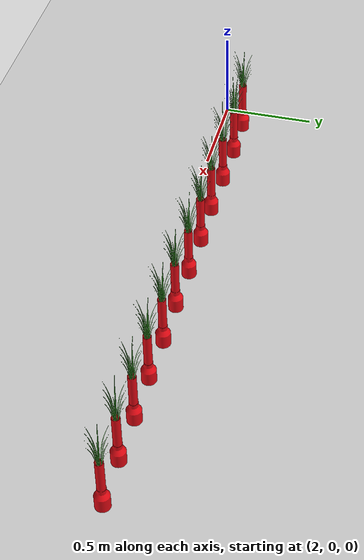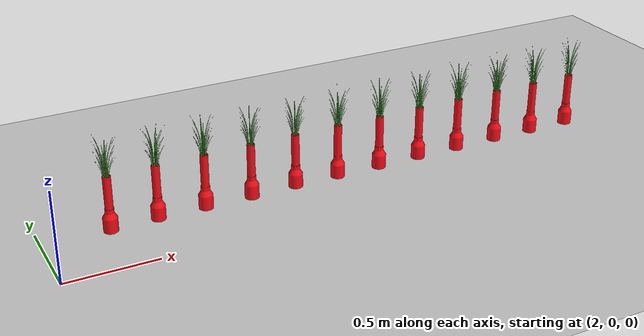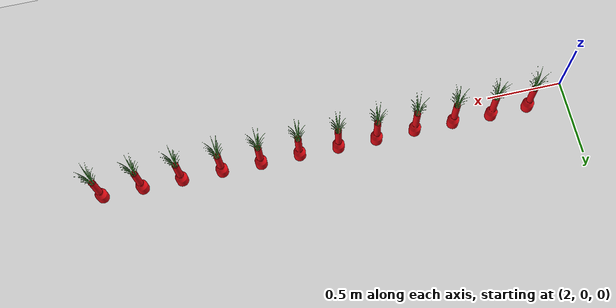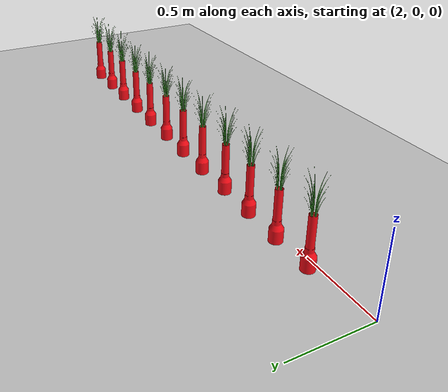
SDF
<sdf version="1.7">
 <world name="default">
  <light name="sun" type="directional">
   <pose>0 0 10 0 -0 0</pose>
   <diffuse>0.8 0.8 0.8 1</diffuse>
   <specular>0.2 0.2 0.2 1</specular>
   <attenuation>
    <range>1000</range>
    <constant>0.9</constant>
    <linear>0.01</linear>
    <quadratic>0.001</quadratic>
   </attenuation>
   <direction>-0.5 0.1 -0.9</direction>
   <spot><inner_angle>0</inner_angle><outer_angle>0</outer_angle><falloff>0</falloff></spot>
  </light>
  <model name="ground_plane">
   <static>1</static>
   <link name="link">
    <collision name="collision">
     <geometry><plane><normal>0 0 1</normal><size>100 100</size></plane></geometry>
     <surface>
      <contact><collide_bitmask>65535</collide_bitmask></contact>
      <friction><ode><mu>100</mu><mu2>50</mu2></ode></friction>
     </surface>
    </collision>
    <visual name="visual">
     <cast_shadows>0</cast_shadows>
     <geometry><plane><normal>0 0 1</normal><size>100 100</size></plane></geometry>
     <material>
      <script><uri>file://media/materials/scripts/gazebo.material</uri><name>Gazebo/Grey</name></script>
     </material>
    </visual>
   </link>
  </model>
  <gravity>0 0 -9.8</gravity>
  <magnetic_field>6e-06 2.3e-05 -4.2e-05</magnetic_field>
  <atmosphere type="adiabatic"/>
  <physics type="ode">
   <max_step_size>0.001</max_step_size>
   <real_time_factor>1</real_time_factor>
   <real_time_update_rate>1000</real_time_update_rate>
  </physics>
  <scene><ambient>0.4 0.4 0.4 1</ambient><background>0.7 0.7 0.7 1</background><shadows>1</shadows></scene>
  <audio><device>default</device></audio>
  <spherical_coordinates>
   <surface_model>EARTH_WGS84</surface_model>
   <latitude_deg>0</latitude_deg>
   <longitude_deg>0</longitude_deg>
   <elevation>0</elevation>
   <heading_deg>0</heading_deg>
  </spherical_coordinates>
  <model name="seed_red">
   <link name="link_1">
    <inertial>
     <mass>1</mass>
     <inertia>
      <ixx>0.166667</ixx>
      <ixy>0</ixy>
      <ixz>0</ixz>
      <iyy>0.166667</iyy>
      <iyz>0</iyz>
      <izz>0.166667</izz>
     </inertia>
    </inertial>
    <visual name="visual">
     <geometry>
      <mesh><uri>/home/entity014/abu2024_ws/src/abu_description/worlds/seed_red.dae</uri><scale>1 1 1</scale></mesh>
     </geometry>
    </visual>
    <collision name="collision">
     <geometry>
      <mesh><uri>/home/entity014/abu2024_ws/src/abu_description/worlds/seed_red.dae</uri><scale>1 1 1</scale></mesh>
     </geometry>
     <surface>
      <friction>
       <ode><mu>1</mu><mu2>1</mu2><fdir1>0 0 0</fdir1><slip1>0</slip1><slip2>0</slip2></ode>
       <torsional>
        <coefficient>1</coefficient>
        <patch_radius>0</patch_radius>
        <surface_radius>0</surface_radius>
        <use_patch_radius>1</use_patch_radius>
        <ode><slip>0</slip></ode>
       </torsional>
      </friction>
      <bounce><restitution_coefficient>0</restitution_coefficient><threshold>1e+06</threshold></bounce>
      <contact>
       <collide_without_contact>0</collide_without_contact>
       <collide_without_contact_bitmask>1</collide_without_contact_bitmask>
       <collide_bitmask>1</collide_bitmask>
       <ode>
        <soft_cfm>0</soft_cfm>
        <soft_erp>0.2</soft_erp>
        <kp>1e+13</kp>
        <kd>1</kd>
        <max_vel>0.01</max_vel>
        <min_depth>0</min_depth>
       </ode>
       <bullet>
        <split_impulse>1</split_impulse>
        <split_impulse_penetration_threshold>-0.01</split_impulse_penetration_threshold>
        <soft_cfm>0</soft_cfm>
        <soft_erp>0.2</soft_erp>
        <kp>1e+13</kp>
        <kd>1</kd>
       </bullet>
      </contact>
     </surface>
    </collision>
   </link>
   <static>0</static>
   <pose>2.30597 0.160395 0.24436 1e-06 -5e-06 -0.0061</pose>
  </model>
  <model name="seed_red_0">
   <link name="link_1">
    <inertial>
     <mass>1</mass>
     <inertia>
      <ixx>0.166667</ixx>
      <ixy>0</ixy>
      <ixz>0</ixz>
      <iyy>0.166667</iyy>
      <iyz>0</iyz>
      <izz>0.166667</izz>
     </inertia>
    </inertial>
    <visual name="visual">
     <geometry>
      <mesh><uri>/home/entity014/abu2024_ws/src/abu_description/worlds/seed_red.dae</uri><scale>1 1 1</scale></mesh>
     </geometry>
    </visual>
    <collision name="collision">
     <geometry>
      <mesh><uri>/home/entity014/abu2024_ws/src/abu_description/worlds/seed_red.dae</uri><scale>1 1 1</scale></mesh>
     </geometry>
     <surface>
      <friction>
       <ode><mu>1</mu><mu2>1</mu2><fdir1>0 0 0</fdir1><slip1>0</slip1><slip2>0</slip2></ode>
       <torsional>
        <coefficient>1</coefficient>
        <patch_radius>0</patch_radius>
        <surface_radius>0</surface_radius>
        <use_patch_radius>1</use_patch_radius>
        <ode><slip>0</slip></ode>
       </torsional>
      </friction>
      <bounce><restitution_coefficient>0</restitution_coefficient><threshold>1e+06</threshold></bounce>
      <contact>
       <collide_without_contact>0</collide_without_contact>
       <collide_without_contact_bitmask>1</collide_without_contact_bitmask>
       <collide_bitmask>1</collide_bitmask>
       <ode>
        <soft_cfm>0</soft_cfm>
        <soft_erp>0.2</soft_erp>
        <kp>1e+13</kp>
        <kd>1</kd>
        <max_vel>0.01</max_vel>
        <min_depth>0</min_depth>
       </ode>
       <bullet>
        <split_impulse>1</split_impulse>
        <split_impulse_penetration_threshold>-0.01</split_impulse_penetration_threshold>
        <soft_cfm>0</soft_cfm>
        <soft_erp>0.2</soft_erp>
        <kp>1e+13</kp>
        <kd>1</kd>
       </bullet>
      </contact>
     </surface>
    </collision>
   </link>
   <static>0</static>
   <pose>2.55272 0.166663 0.24437 1.4e-05 -1e-06 -1.29289</pose>
  </model>
  <model name="seed_red_1">
   <link name="link_1">
    <inertial>
     <mass>1</mass>
     <inertia>
      <ixx>0.166667</ixx>
      <ixy>0</ixy>
      <ixz>0</ixz>
      <iyy>0.166667</iyy>
      <iyz>0</iyz>
      <izz>0.166667</izz>
     </inertia>
    </inertial>
    <visual name="visual">
     <geometry>
      <mesh><uri>/home/entity014/abu2024_ws/src/abu_description/worlds/seed_red.dae</uri><scale>1 1 1</scale></mesh>
     </geometry>
    </visual>
    <collision name="collision">
     <geometry>
      <mesh><uri>/home/entity014/abu2024_ws/src/abu_description/worlds/seed_red.dae</uri><scale>1 1 1</scale></mesh>
     </geometry>
     <surface>
      <friction>
       <ode><mu>1</mu><mu2>1</mu2><fdir1>0 0 0</fdir1><slip1>0</slip1><slip2>0</slip2></ode>
       <torsional>
        <coefficient>1</coefficient>
        <patch_radius>0</patch_radius>
        <surface_radius>0</surface_radius>
        <use_patch_radius>1</use_patch_radius>
        <ode><slip>0</slip></ode>
       </torsional>
      </friction>
      <bounce><restitution_coefficient>0</restitution_coefficient><threshold>1e+06</threshold></bounce>
      <contact>
       <collide_without_contact>0</collide_without_contact>
       <collide_without_contact_bitmask>1</collide_without_contact_bitmask>
       <collide_bitmask>1</collide_bitmask>
       <ode>
        <soft_cfm>0</soft_cfm>
        <soft_erp>0.2</soft_erp>
        <kp>1e+13</kp>
        <kd>1</kd>
        <max_vel>0.01</max_vel>
        <min_depth>0</min_depth>
       </ode>
       <bullet>
        <split_impulse>1</split_impulse>
        <split_impulse_penetration_threshold>-0.01</split_impulse_penetration_threshold>
        <soft_cfm>0</soft_cfm>
        <soft_erp>0.2</soft_erp>
        <kp>1e+13</kp>
        <kd>1</kd>
       </bullet>
      </contact>
     </surface>
    </collision>
   </link>
   <static>0</static>
   <pose>2.80489 0.163479 0.24436 4e-06 -5e-06 0.181915</pose>
  </model>
  <model name="seed_red_2">
   <link name="link_1">
    <inertial>
     <mass>1</mass>
     <inertia>
      <ixx>0.166667</ixx>
      <ixy>0</ixy>
      <ixz>0</ixz>
      <iyy>0.166667</iyy>
      <iyz>0</iyz>
      <izz>0.166667</izz>
     </inertia>
    </inertial>
    <visual name="visual">
     <geometry>
      <mesh><uri>/home/entity014/abu2024_ws/src/abu_description/worlds/seed_red.dae</uri><scale>1 1 1</scale></mesh>
     </geometry>
    </visual>
    <collision name="collision">
     <geometry>
      <mesh><uri>/home/entity014/abu2024_ws/src/abu_description/worlds/seed_red.dae</uri><scale>1 1 1</scale></mesh>
     </geometry>
     <surface>
      <friction>
       <ode><mu>1</mu><mu2>1</mu2><fdir1>0 0 0</fdir1><slip1>0</slip1><slip2>0</slip2></ode>
       <torsional>
        <coefficient>1</coefficient>
        <patch_radius>0</patch_radius>
        <surface_radius>0</surface_radius>
        <use_patch_radius>1</use_patch_radius>
        <ode><slip>0</slip></ode>
       </torsional>
      </friction>
      <bounce><restitution_coefficient>0</restitution_coefficient><threshold>1e+06</threshold></bounce>
      <contact>
       <collide_without_contact>0</collide_without_contact>
       <collide_without_contact_bitmask>1</collide_without_contact_bitmask>
       <collide_bitmask>1</collide_bitmask>
       <ode>
        <soft_cfm>0</soft_cfm>
        <soft_erp>0.2</soft_erp>
        <kp>1e+13</kp>
        <kd>1</kd>
        <max_vel>0.01</max_vel>
        <min_depth>0</min_depth>
       </ode>
       <bullet>
        <split_impulse>1</split_impulse>
        <split_impulse_penetration_threshold>-0.01</split_impulse_penetration_threshold>
        <soft_cfm>0</soft_cfm>
        <soft_erp>0.2</soft_erp>
        <kp>1e+13</kp>
        <kd>1</kd>
       </bullet>
      </contact>
     </surface>
    </collision>
   </link>
   <static>0</static>
   <pose>3.05658 0.160247 0.244369 2e-06 2e-06 0.026555</pose>
  </model>
  <model name="seed_red_3">
   <link name="link_1">
    <inertial>
     <mass>1</mass>
     <inertia>
      <ixx>0.166667</ixx>
      <ixy>0</ixy>
      <ixz>0</ixz>
      <iyy>0.166667</iyy>
      <iyz>0</iyz>
      <izz>0.166667</izz>
     </inertia>
    </inertial>
    <visual name="visual">
     <geometry>
      <mesh><uri>/home/entity014/abu2024_ws/src/abu_description/worlds/seed_red.dae</uri><scale>1 1 1</scale></mesh>
     </geometry>
    </visual>
    <collision name="collision">
     <geometry>
      <mesh><uri>/home/entity014/abu2024_ws/src/abu_description/worlds/seed_red.dae</uri><scale>1 1 1</scale></mesh>
     </geometry>
     <surface>
      <friction>
       <ode><mu>1</mu><mu2>1</mu2><fdir1>0 0 0</fdir1><slip1>0</slip1><slip2>0</slip2></ode>
       <torsional>
        <coefficient>1</coefficient>
        <patch_radius>0</patch_radius>
        <surface_radius>0</surface_radius>
        <use_patch_radius>1</use_patch_radius>
        <ode><slip>0</slip></ode>
       </torsional>
      </friction>
      <bounce><restitution_coefficient>0</restitution_coefficient><threshold>1e+06</threshold></bounce>
      <contact>
       <collide_without_contact>0</collide_without_contact>
       <collide_without_contact_bitmask>1</collide_without_contact_bitmask>
       <collide_bitmask>1</collide_bitmask>
       <ode>
        <soft_cfm>0</soft_cfm>
        <soft_erp>0.2</soft_erp>
        <kp>1e+13</kp>
        <kd>1</kd>
        <max_vel>0.01</max_vel>
        <min_depth>0</min_depth>
       </ode>
       <bullet>
        <split_impulse>1</split_impulse>
        <split_impulse_penetration_threshold>-0.01</split_impulse_penetration_threshold>
        <soft_cfm>0</soft_cfm>
        <soft_erp>0.2</soft_erp>
        <kp>1e+13</kp>
        <kd>1</kd>
       </bullet>
      </contact>
     </surface>
    </collision>
   </link>
   <static>0</static>
   <pose>3.30914 0.16565 0.24437 5e-06 -1.6e-05 -0.000332</pose>
  </model>
  <model name="seed_red_4">
   <link name="link_1">
    <inertial>
     <mass>1</mass>
     <inertia>
      <ixx>0.166667</ixx>
      <ixy>0</ixy>
      <ixz>0</ixz>
      <iyy>0.166667</iyy>
      <iyz>0</iyz>
      <izz>0.166667</izz>
     </inertia>
    </inertial>
    <visual name="visual">
     <geometry>
      <mesh><uri>/home/entity014/abu2024_ws/src/abu_description/worlds/seed_red.dae</uri><scale>1 1 1</scale></mesh>
     </geometry>
    </visual>
    <collision name="collision">
     <geometry>
      <mesh><uri>/home/entity014/abu2024_ws/src/abu_description/worlds/seed_red.dae</uri><scale>1 1 1</scale></mesh>
     </geometry>
     <surface>
      <friction>
       <ode><mu>1</mu><mu2>1</mu2><fdir1>0 0 0</fdir1><slip1>0</slip1><slip2>0</slip2></ode>
       <torsional>
        <coefficient>1</coefficient>
        <patch_radius>0</patch_radius>
        <surface_radius>0</surface_radius>
        <use_patch_radius>1</use_patch_radius>
        <ode><slip>0</slip></ode>
       </torsional>
      </friction>
      <bounce><restitution_coefficient>0</restitution_coefficient><threshold>1e+06</threshold></bounce>
      <contact>
       <collide_without_contact>0</collide_without_contact>
       <collide_without_contact_bitmask>1</collide_without_contact_bitmask>
       <collide_bitmask>1</collide_bitmask>
       <ode>
        <soft_cfm>0</soft_cfm>
        <soft_erp>0.2</soft_erp>
        <kp>1e+13</kp>
        <kd>1</kd>
        <max_vel>0.01</max_vel>
        <min_depth>0</min_depth>
       </ode>
       <bullet>
        <split_impulse>1</split_impulse>
        <split_impulse_penetration_threshold>-0.01</split_impulse_penetration_threshold>
        <soft_cfm>0</soft_cfm>
        <soft_erp>0.2</soft_erp>
        <kp>1e+13</kp>
        <kd>1</kd>
       </bullet>
      </contact>
     </surface>
    </collision>
   </link>
   <static>0</static>
   <pose>3.55706 0.165018 0.244369 -5e-06 6e-06 0.007086</pose>
  </model>
  <model name="seed_red_5">
   <link name="link_1">
    <inertial>
     <mass>1</mass>
     <inertia>
      <ixx>0.166667</ixx>
      <ixy>0</ixy>
      <ixz>0</ixz>
      <iyy>0.166667</iyy>
      <iyz>0</iyz>
      <izz>0.166667</izz>
     </inertia>
    </inertial>
    <visual name="visual">
     <geometry>
      <mesh><uri>/home/entity014/abu2024_ws/src/abu_description/worlds/seed_red.dae</uri><scale>1 1 1</scale></mesh>
     </geometry>
    </visual>
    <collision name="collision">
     <geometry>
      <mesh><uri>/home/entity014/abu2024_ws/src/abu_description/worlds/seed_red.dae</uri><scale>1 1 1</scale></mesh>
     </geometry>
     <surface>
      <friction>
       <ode><mu>1</mu><mu2>1</mu2><fdir1>0 0 0</fdir1><slip1>0</slip1><slip2>0</slip2></ode>
       <torsional>
        <coefficient>1</coefficient>
        <patch_radius>0</patch_radius>
        <surface_radius>0</surface_radius>
        <use_patch_radius>1</use_patch_radius>
        <ode><slip>0</slip></ode>
       </torsional>
      </friction>
      <bounce><restitution_coefficient>0</restitution_coefficient><threshold>1e+06</threshold></bounce>
      <contact>
       <collide_without_contact>0</collide_without_contact>
       <collide_without_contact_bitmask>1</collide_without_contact_bitmask>
       <collide_bitmask>1</collide_bitmask>
       <ode>
        <soft_cfm>0</soft_cfm>
        <soft_erp>0.2</soft_erp>
        <kp>1e+13</kp>
        <kd>1</kd>
        <max_vel>0.01</max_vel>
        <min_depth>0</min_depth>
       </ode>
       <bullet>
        <split_impulse>1</split_impulse>
        <split_impulse_penetration_threshold>-0.01</split_impulse_penetration_threshold>
        <soft_cfm>0</soft_cfm>
        <soft_erp>0.2</soft_erp>
        <kp>1e+13</kp>
        <kd>1</kd>
       </bullet>
      </contact>
     </surface>
    </collision>
   </link>
   <static>0</static>
   <pose>3.80696 0.160766 0.244369 3e-06 1e-06 -0.002619</pose>
  </model>
  <model name="seed_red_6">
   <link name="link_1">
    <inertial>
     <mass>1</mass>
     <inertia>
      <ixx>0.166667</ixx>
      <ixy>0</ixy>
      <ixz>0</ixz>
      <iyy>0.166667</iyy>
      <iyz>0</iyz>
      <izz>0.166667</izz>
     </inertia>
    </inertial>
    <visual name="visual">
     <geometry>
      <mesh><uri>/home/entity014/abu2024_ws/src/abu_description/worlds/seed_red.dae</uri><scale>1 1 1</scale></mesh>
     </geometry>
    </visual>
    <collision name="collision">
     <geometry>
      <mesh><uri>/home/entity014/abu2024_ws/src/abu_description/worlds/seed_red.dae</uri><scale>1 1 1</scale></mesh>
     </geometry>
     <surface>
      <friction>
       <ode><mu>1</mu><mu2>1</mu2><fdir1>0 0 0</fdir1><slip1>0</slip1><slip2>0</slip2></ode>
       <torsional>
        <coefficient>1</coefficient>
        <patch_radius>0</patch_radius>
        <surface_radius>0</surface_radius>
        <use_patch_radius>1</use_patch_radius>
        <ode><slip>0</slip></ode>
       </torsional>
      </friction>
      <bounce><restitution_coefficient>0</restitution_coefficient><threshold>1e+06</threshold></bounce>
      <contact>
       <collide_without_contact>0</collide_without_contact>
       <collide_without_contact_bitmask>1</collide_without_contact_bitmask>
       <collide_bitmask>1</collide_bitmask>
       <ode>
        <soft_cfm>0</soft_cfm>
        <soft_erp>0.2</soft_erp>
        <kp>1e+13</kp>
        <kd>1</kd>
        <max_vel>0.01</max_vel>
        <min_depth>0</min_depth>
       </ode>
       <bullet>
        <split_impulse>1</split_impulse>
        <split_impulse_penetration_threshold>-0.01</split_impulse_penetration_threshold>
        <soft_cfm>0</soft_cfm>
        <soft_erp>0.2</soft_erp>
        <kp>1e+13</kp>
        <kd>1</kd>
       </bullet>
      </contact>
     </surface>
    </collision>
   </link>
   <static>0</static>
   <pose>4.0561 0.163955 0.24436 1.1e-05 -8e-06 -0.032561</pose>
  </model>
  <model name="seed_red_7">
   <link name="link_1">
    <inertial>
     <mass>1</mass>
     <inertia>
      <ixx>0.166667</ixx>
      <ixy>0</ixy>
      <ixz>0</ixz>
      <iyy>0.166667</iyy>
      <iyz>0</iyz>
      <izz>0.166667</izz>
     </inertia>
    </inertial>
    <visual name="visual">
     <geometry>
      <mesh><uri>/home/entity014/abu2024_ws/src/abu_description/worlds/seed_red.dae</uri><scale>1 1 1</scale></mesh>
     </geometry>
    </visual>
    <collision name="collision">
     <geometry>
      <mesh><uri>/home/entity014/abu2024_ws/src/abu_description/worlds/seed_red.dae</uri><scale>1 1 1</scale></mesh>
     </geometry>
     <surface>
      <friction>
       <ode><mu>1</mu><mu2>1</mu2><fdir1>0 0 0</fdir1><slip1>0</slip1><slip2>0</slip2></ode>
       <torsional>
        <coefficient>1</coefficient>
        <patch_radius>0</patch_radius>
        <surface_radius>0</surface_radius>
        <use_patch_radius>1</use_patch_radius>
        <ode><slip>0</slip></ode>
       </torsional>
      </friction>
      <bounce><restitution_coefficient>0</restitution_coefficient><threshold>1e+06</threshold></bounce>
      <contact>
       <collide_without_contact>0</collide_without_contact>
       <collide_without_contact_bitmask>1</collide_without_contact_bitmask>
       <collide_bitmask>1</collide_bitmask>
       <ode>
        <soft_cfm>0</soft_cfm>
        <soft_erp>0.2</soft_erp>
        <kp>1e+13</kp>
        <kd>1</kd>
        <max_vel>0.01</max_vel>
        <min_depth>0</min_depth>
       </ode>
       <bullet>
        <split_impulse>1</split_impulse>
        <split_impulse_penetration_threshold>-0.01</split_impulse_penetration_threshold>
        <soft_cfm>0</soft_cfm>
        <soft_erp>0.2</soft_erp>
        <kp>1e+13</kp>
        <kd>1</kd>
       </bullet>
      </contact>
     </surface>
    </collision>
   </link>
   <static>0</static>
   <pose>4.30494 0.160933 0.24436 3e-06 -1.1e-05 -0.020565</pose>
  </model>
  <model name="seed_red_8">
   <link name="link_1">
    <inertial>
     <mass>1</mass>
     <inertia>
      <ixx>0.166667</ixx>
      <ixy>0</ixy>
      <ixz>0</ixz>
      <iyy>0.166667</iyy>
      <iyz>0</iyz>
      <izz>0.166667</izz>
     </inertia>
    </inertial>
    <visual name="visual">
     <geometry>
      <mesh><uri>/home/entity014/abu2024_ws/src/abu_description/worlds/seed_red.dae</uri><scale>1 1 1</scale></mesh>
     </geometry>
    </visual>
    <collision name="collision">
     <geometry>
      <mesh><uri>/home/entity014/abu2024_ws/src/abu_description/worlds/seed_red.dae</uri><scale>1 1 1</scale></mesh>
     </geometry>
     <surface>
      <friction>
       <ode><mu>1</mu><mu2>1</mu2><fdir1>0 0 0</fdir1><slip1>0</slip1><slip2>0</slip2></ode>
       <torsional>
        <coefficient>1</coefficient>
        <patch_radius>0</patch_radius>
        <surface_radius>0</surface_radius>
        <use_patch_radius>1</use_patch_radius>
        <ode><slip>0</slip></ode>
       </torsional>
      </friction>
      <bounce><restitution_coefficient>0</restitution_coefficient><threshold>1e+06</threshold></bounce>
      <contact>
       <collide_without_contact>0</collide_without_contact>
       <collide_without_contact_bitmask>1</collide_without_contact_bitmask>
       <collide_bitmask>1</collide_bitmask>
       <ode>
        <soft_cfm>0</soft_cfm>
        <soft_erp>0.2</soft_erp>
        <kp>1e+13</kp>
        <kd>1</kd>
        <max_vel>0.01</max_vel>
        <min_depth>0</min_depth>
       </ode>
       <bullet>
        <split_impulse>1</split_impulse>
        <split_impulse_penetration_threshold>-0.01</split_impulse_penetration_threshold>
        <soft_cfm>0</soft_cfm>
        <soft_erp>0.2</soft_erp>
        <kp>1e+13</kp>
        <kd>1</kd>
       </bullet>
      </contact>
     </surface>
    </collision>
   </link>
   <static>0</static>
   <pose>4.5602 0.161999 0.24437 1.7e-05 -1e-05 0.000205</pose>
  </model>
  <model name="seed_red_9">
   <link name="link_1">
    <inertial>
     <mass>1</mass>
     <inertia>
      <ixx>0.166667</ixx>
      <ixy>0</ixy>
      <ixz>0</ixz>
      <iyy>0.166667</iyy>
      <iyz>0</iyz>
      <izz>0.166667</izz>
     </inertia>
    </inertial>
    <visual name="visual">
     <geometry>
      <mesh><uri>/home/entity014/abu2024_ws/src/abu_description/worlds/seed_red.dae</uri><scale>1 1 1</scale></mesh>
     </geometry>
    </visual>
    <collision name="collision">
     <geometry>
      <mesh><uri>/home/entity014/abu2024_ws/src/abu_description/worlds/seed_red.dae</uri><scale>1 1 1</scale></mesh>
     </geometry>
     <surface>
      <friction>
       <ode><mu>1</mu><mu2>1</mu2><fdir1>0 0 0</fdir1><slip1>0</slip1><slip2>0</slip2></ode>
       <torsional>
        <coefficient>1</coefficient>
        <patch_radius>0</patch_radius>
        <surface_radius>0</surface_radius>
        <use_patch_radius>1</use_patch_radius>
        <ode><slip>0</slip></ode>
       </torsional>
      </friction>
      <bounce><restitution_coefficient>0</restitution_coefficient><threshold>1e+06</threshold></bounce>
      <contact>
       <collide_without_contact>0</collide_without_contact>
       <collide_without_contact_bitmask>1</collide_without_contact_bitmask>
       <collide_bitmask>1</collide_bitmask>
       <ode>
        <soft_cfm>0</soft_cfm>
        <soft_erp>0.2</soft_erp>
        <kp>1e+13</kp>
        <kd>1</kd>
        <max_vel>0.01</max_vel>
        <min_depth>0</min_depth>
       </ode>
       <bullet>
        <split_impulse>1</split_impulse>
        <split_impulse_penetration_threshold>-0.01</split_impulse_penetration_threshold>
        <soft_cfm>0</soft_cfm>
        <soft_erp>0.2</soft_erp>
        <kp>1e+13</kp>
        <kd>1</kd>
       </bullet>
      </contact>
     </surface>
    </collision>
   </link>
   <static>0</static>
   <pose>4.80888 0.160134 0.24436 -4e-06 -1.2e-05 0.116317</pose>
  </model>
  <model name="seed_red_10">
   <link name="link_1">
    <inertial>
     <mass>1</mass>
     <inertia>
      <ixx>0.166667</ixx>
      <ixy>0</ixy>
      <ixz>0</ixz>
      <iyy>0.166667</iyy>
      <iyz>0</iyz>
      <izz>0.166667</izz>
     </inertia>
    </inertial>
    <visual name="visual">
     <geometry>
      <mesh><uri>/home/entity014/abu2024_ws/src/abu_description/worlds/seed_red.dae</uri><scale>1 1 1</scale></mesh>
     </geometry>
    </visual>
    <collision name="collision">
     <geometry>
      <mesh><uri>/home/entity014/abu2024_ws/src/abu_description/worlds/seed_red.dae</uri><scale>1 1 1</scale></mesh>
     </geometry>
     <surface>
      <friction>
       <ode><mu>1</mu><mu2>1</mu2><fdir1>0 0 0</fdir1><slip1>0</slip1><slip2>0</slip2></ode>
       <torsional>
        <coefficient>1</coefficient>
        <patch_radius>0</patch_radius>
        <surface_radius>0</surface_radius>
        <use_patch_radius>1</use_patch_radius>
        <ode><slip>0</slip></ode>
       </torsional>
      </friction>
      <bounce><restitution_coefficient>0</restitution_coefficient><threshold>1e+06</threshold></bounce>
      <contact>
       <collide_without_contact>0</collide_without_contact>
       <collide_without_contact_bitmask>1</collide_without_contact_bitmask>
       <collide_bitmask>1</collide_bitmask>
       <ode>
        <soft_cfm>0</soft_cfm>
        <soft_erp>0.2</soft_erp>
        <kp>1e+13</kp>
        <kd>1</kd>
        <max_vel>0.01</max_vel>
        <min_depth>0</min_depth>
       </ode>
       <bullet>
        <split_impulse>1</split_impulse>
        <split_impulse_penetration_threshold>-0.01</split_impulse_penetration_threshold>
        <soft_cfm>0</soft_cfm>
        <soft_erp>0.2</soft_erp>
        <kp>1e+13</kp>
        <kd>1</kd>
       </bullet>
      </contact>
     </surface>
    </collision>
   </link>
   <static>0</static>
   <pose>5.06177 0.161644 0.244359 -2e-06 2e-06 0.173555</pose>
  </model>
 </world>
</sdf>
